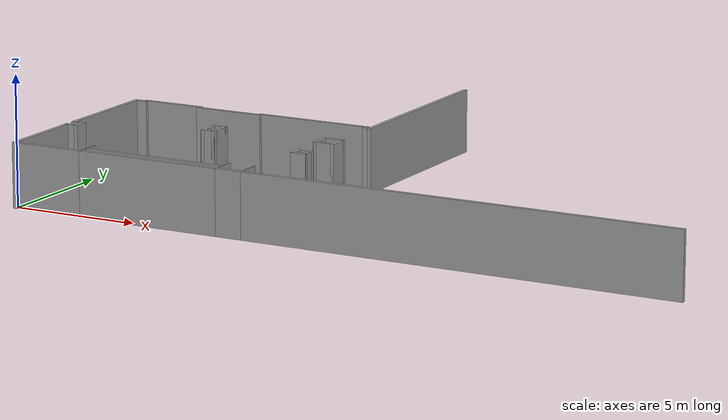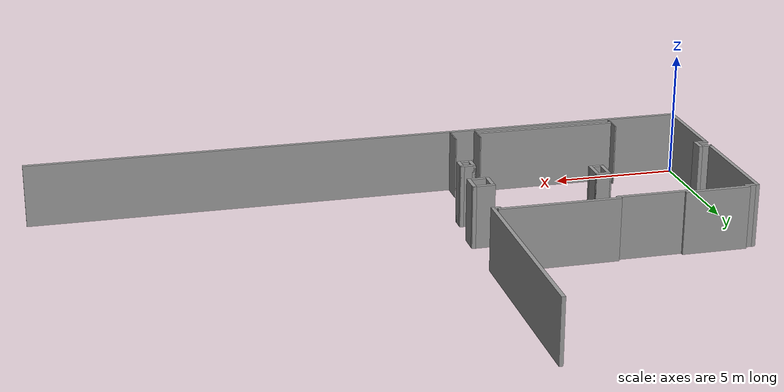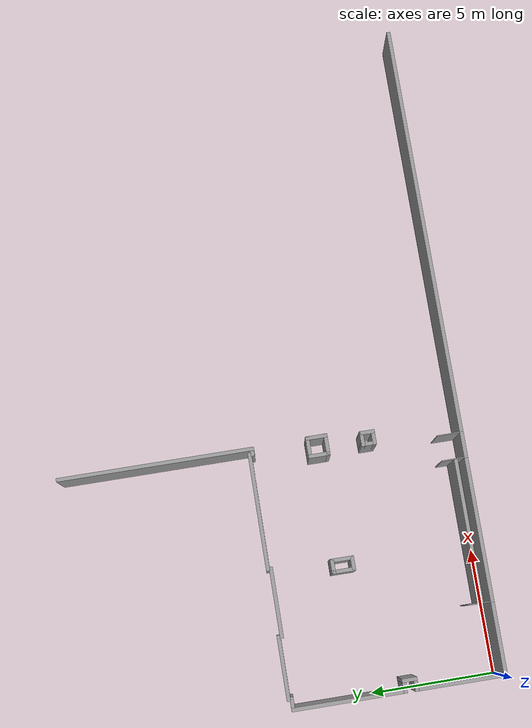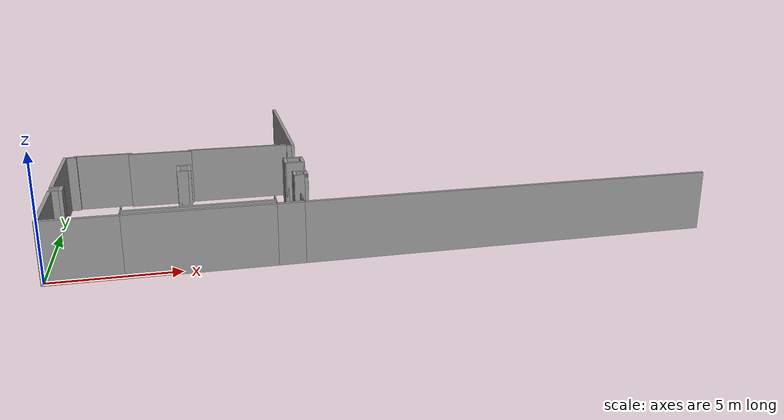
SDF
<?xml version='1.0'?>
<sdf version='1.6'>
  <model name='hoodcourt_pillar'>
    <pose frame=''>13.2775 7.925 0 0 -0 0</pose>
    <link name='Wall_12'>
      <collision name='Wall_12_Collision'>
        <geometry>
          <box>
            <size>2.95 0.15 2.5</size>
          </box>
        </geometry>
        <pose frame=''>0 0 1.25 0 -0 0</pose>
      </collision>
      <visual name='Wall_12_Visual'>
        <pose frame=''>0 0 1.25 0 -0 0</pose>
        <geometry>
          <box>
            <size>2.95 0.15 2.5</size>
          </box>
        </geometry>
        <material>
          <script>
            <uri>file://media/materials/scripts/gazebo.material</uri>
            <name>Gazebo/Grey</name>
          </script>
          <ambient>1 1 1 1</ambient>
        </material>
      </visual>
      <pose frame=''>-11.8775 -8.075 0 0 -0 0</pose>
    </link>
    <link name='Wall_120'>
      <collision name='Wall_120_Collision'>
        <geometry>
          <box>
            <size>0.6 0.15 2.5</size>
          </box>
        </geometry>
        <pose frame=''>0 0 1.25 0 -0 0</pose>
      </collision>
      <visual name='Wall_120_Visual'>
        <pose frame=''>0 0 1.25 0 -0 0</pose>
        <geometry>
          <box>
            <size>0.6 0.15 2.5</size>
          </box>
        </geometry>
        <material>
          <script>
            <uri>file://media/materials/scripts/gazebo.material</uri>
            <name>Gazebo/Grey</name>
          </script>
          <ambient>1 1 1 1</ambient>
        </material>
      </visual>
      <pose frame=''>-8.0925 -2.935 0 0 -0 0</pose>
    </link>
    <link name='Wall_122'>
      <collision name='Wall_122_Collision'>
        <geometry>
          <box>
            <size>0.95 0.15 2.5</size>
          </box>
        </geometry>
        <pose frame=''>0 0 1.25 0 -0 0</pose>
      </collision>
      <visual name='Wall_122_Visual'>
        <pose frame=''>0 0 1.25 0 -0 0</pose>
        <geometry>
          <box>
            <size>0.95 0.15 2.5</size>
          </box>
        </geometry>
        <material>
          <script>
            <uri>file://media/materials/scripts/gazebo.material</uri>
            <name>Gazebo/Grey</name>
          </script>
          <ambient>1 1 1 1</ambient>
        </material>
      </visual>
      <pose frame=''>-8.3175 -2.535 0 0 -0 1.5708</pose>
    </link>
    <link name='Wall_124'>
      <collision name='Wall_124_Collision'>
        <geometry>
          <box>
            <size>0.6 0.15 2.5</size>
          </box>
        </geometry>
        <pose frame=''>0 0 1.25 0 -0 0</pose>
      </collision>
      <visual name='Wall_124_Visual'>
        <pose frame=''>0 0 1.25 0 -0 0</pose>
        <geometry>
          <box>
            <size>0.6 0.15 2.5</size>
          </box>
        </geometry>
        <material>
          <script>
            <uri>file://media/materials/scripts/gazebo.material</uri>
            <name>Gazebo/Grey</name>
          </script>
          <ambient>1 1 1 1</ambient>
        </material>
      </visual>
      <pose frame=''>-8.0925 -2.135 0 0 -0 0</pose>
    </link>
    <link name='Wall_126'>
      <collision name='Wall_126_Collision'>
        <geometry>
          <box>
            <size>0.95 0.15 2.5</size>
          </box>
        </geometry>
        <pose frame=''>0 0 1.25 0 -0 0</pose>
      </collision>
      <visual name='Wall_126_Visual'>
        <pose frame=''>0 0 1.25 0 -0 0</pose>
        <geometry>
          <box>
            <size>0.95 0.15 2.5</size>
          </box>
        </geometry>
        <material>
          <script>
            <uri>file://media/materials/scripts/gazebo.material</uri>
            <name>Gazebo/Grey</name>
          </script>
          <ambient>1 1 1 1</ambient>
        </material>
      </visual>
      <pose frame=''>-7.8675 -2.535 0 0 0 -1.5708</pose>
    </link>
    <link name='Wall_128'>
      <collision name='Wall_128_Collision'>
        <geometry>
          <box>
            <size>0.88 0.15 2.5</size>
          </box>
        </geometry>
        <pose frame=''>0 0 1.25 0 -0 0</pose>
      </collision>
      <visual name='Wall_128_Visual'>
        <pose frame=''>0 0 1.25 0 -0 0</pose>
        <geometry>
          <box>
            <size>0.88 0.15 2.5</size>
          </box>
        </geometry>
        <material>
          <script>
            <uri>file://media/materials/scripts/gazebo.material</uri>
            <name>Gazebo/Grey</name>
          </script>
          <ambient>1 1 1 1</ambient>
        </material>
      </visual>
      <pose frame=''>-3.3025 -2.695 0 0 -0 0</pose>
    </link>
    <link name='Wall_130'>
      <collision name='Wall_130_Collision'>
        <geometry>
          <box>
            <size>0.88 0.15 2.5</size>
          </box>
        </geometry>
        <pose frame=''>0 0 1.25 0 -0 0</pose>
      </collision>
      <visual name='Wall_130_Visual'>
        <pose frame=''>0 0 1.25 0 -0 0</pose>
        <geometry>
          <box>
            <size>0.88 0.15 2.5</size>
          </box>
        </geometry>
        <material>
          <script>
            <uri>file://media/materials/scripts/gazebo.material</uri>
            <name>Gazebo/Grey</name>
          </script>
          <ambient>1 1 1 1</ambient>
        </material>
      </visual>
      <pose frame=''>-3.6675 -2.33 0 0 -0 1.5708</pose>
    </link>
    <link name='Wall_132'>
      <collision name='Wall_132_Collision'>
        <geometry>
          <box>
            <size>0.88 0.15 2.5</size>
          </box>
        </geometry>
        <pose frame=''>0 0 1.25 0 -0 0</pose>
      </collision>
      <visual name='Wall_132_Visual'>
        <pose frame=''>0 0 1.25 0 -0 0</pose>
        <geometry>
          <box>
            <size>0.88 0.15 2.5</size>
          </box>
        </geometry>
        <material>
          <script>
            <uri>file://media/materials/scripts/gazebo.material</uri>
            <name>Gazebo/Grey</name>
          </script>
          <ambient>1 1 1 1</ambient>
        </material>
      </visual>
      <pose frame=''>-2.9375 -2.33 0 0 -0 1.5708</pose>
    </link>
    <link name='Wall_134'>
      <collision name='Wall_134_Collision'>
        <geometry>
          <box>
            <size>0.88 0.15 2.5</size>
          </box>
        </geometry>
        <pose frame=''>0 0 1.25 0 -0 0</pose>
      </collision>
      <visual name='Wall_134_Visual'>
        <pose frame=''>0 0 1.25 0 -0 0</pose>
        <geometry>
          <box>
            <size>0.88 0.15 2.5</size>
          </box>
        </geometry>
        <material>
          <script>
            <uri>file://media/materials/scripts/gazebo.material</uri>
            <name>Gazebo/Grey</name>
          </script>
          <ambient>1 1 1 1</ambient>
        </material>
      </visual>
      <pose frame=''>-3.3025 -1.965 0 0 -0 3.14159</pose>
    </link>
    <link name='Wall_136'>
      <collision name='Wall_136_Collision'>
        <geometry>
          <box>
            <size>0.61 0.15 2.5</size>
          </box>
        </geometry>
        <pose frame=''>0 0 1.25 0 -0 0</pose>
      </collision>
      <visual name='Wall_136_Visual'>
        <pose frame=''>0 0 1.25 0 -0 0</pose>
        <geometry>
          <box>
            <size>0.61 0.15 2.5</size>
          </box>
        </geometry>
        <material>
          <script>
            <uri>file://media/materials/scripts/gazebo.material</uri>
            <name>Gazebo/Grey</name>
          </script>
          <ambient>1 1 1 1</ambient>
        </material>
      </visual>
      <pose frame=''>-3.3025 -4.585 0 0 -0 0</pose>
    </link>
    <link name='Wall_138'>
      <collision name='Wall_138_Collision'>
        <geometry>
          <box>
            <size>0.61 0.15 2.5</size>
          </box>
        </geometry>
        <pose frame=''>0 0 1.25 0 -0 0</pose>
      </collision>
      <visual name='Wall_138_Visual'>
        <pose frame=''>0 0 1.25 0 -0 0</pose>
        <geometry>
          <box>
            <size>0.61 0.15 2.5</size>
          </box>
        </geometry>
        <material>
          <script>
            <uri>file://media/materials/scripts/gazebo.material</uri>
            <name>Gazebo/Grey</name>
          </script>
          <ambient>1 1 1 1</ambient>
        </material>
      </visual>
      <pose frame=''>-3.5325 -4.355 0 0 -0 1.5708</pose>
    </link>
    <link name='Wall_140'>
      <collision name='Wall_140_Collision'>
        <geometry>
          <box>
            <size>0.61 0.15 2.5</size>
          </box>
        </geometry>
        <pose frame=''>0 0 1.25 0 -0 0</pose>
      </collision>
      <visual name='Wall_140_Visual'>
        <pose frame=''>0 0 1.25 0 -0 0</pose>
        <geometry>
          <box>
            <size>0.61 0.15 2.5</size>
          </box>
        </geometry>
        <material>
          <script>
            <uri>file://media/materials/scripts/gazebo.material</uri>
            <name>Gazebo/Grey</name>
          </script>
          <ambient>1 1 1 1</ambient>
        </material>
      </visual>
      <pose frame=''>-3.0725 -4.355 0 0 -0 1.5708</pose>
    </link>
    <link name='Wall_142'>
      <collision name='Wall_142_Collision'>
        <geometry>
          <box>
            <size>0.61 0.15 2.5</size>
          </box>
        </geometry>
        <pose frame=''>0 0 1.25 0 -0 0</pose>
      </collision>
      <visual name='Wall_142_Visual'>
        <pose frame=''>0 0 1.25 0 -0 0</pose>
        <geometry>
          <box>
            <size>0.61 0.15 2.5</size>
          </box>
        </geometry>
        <material>
          <script>
            <uri>file://media/materials/scripts/gazebo.material</uri>
            <name>Gazebo/Grey</name>
          </script>
          <ambient>1 1 1 1</ambient>
        </material>
      </visual>
      <pose frame=''>-3.3025 -4.125 0 0 -0 0</pose>
    </link>
    <link name='Wall_17'>
      <collision name='Wall_17_Collision'>
        <geometry>
          <box>
            <size>3.35 0.15 2.5</size>
          </box>
        </geometry>
        <pose frame=''>0 0 1.25 0 -0 0</pose>
      </collision>
      <visual name='Wall_17_Visual'>
        <pose frame=''>0 0 1.25 0 -0 0</pose>
        <geometry>
          <box>
            <size>3.35 0.15 2.5</size>
          </box>
        </geometry>
        <material>
          <script>
            <uri>file://media/materials/scripts/gazebo.material</uri>
            <name>Gazebo/Grey</name>
          </script>
          <ambient>1 1 1 1</ambient>
        </material>
      </visual>
      <pose frame=''>-13.2775 -6.325 0 0 -0 1.5708</pose>
    </link>
    <link name='Wall_19'>
      <collision name='Wall_19_Collision'>
        <geometry>
          <box>
            <size>0.41 0.15 2.5</size>
          </box>
        </geometry>
        <pose frame=''>0 0 1.25 0 -0 0</pose>
      </collision>
      <visual name='Wall_19_Visual'>
        <pose frame=''>0 0 1.25 0 -0 0</pose>
        <geometry>
          <box>
            <size>0.41 0.15 2.5</size>
          </box>
        </geometry>
        <material>
          <script>
            <uri>file://media/materials/scripts/gazebo.material</uri>
            <name>Gazebo/Grey</name>
          </script>
          <ambient>1 1 1 1</ambient>
        </material>
      </visual>
      <pose frame=''>-13.1475 -4.575 0 0 -0 0</pose>
    </link>
    <link name='Wall_21'>
      <collision name='Wall_21_Collision'>
        <geometry>
          <box>
            <size>0.41 0.15 2.5</size>
          </box>
        </geometry>
        <pose frame=''>0 0 1.25 0 -0 0</pose>
      </collision>
      <visual name='Wall_21_Visual'>
        <pose frame=''>0 0 1.25 0 -0 0</pose>
        <geometry>
          <box>
            <size>0.41 0.15 2.5</size>
          </box>
        </geometry>
        <material>
          <script>
            <uri>file://media/materials/scripts/gazebo.material</uri>
            <name>Gazebo/Grey</name>
          </script>
          <ambient>1 1 1 1</ambient>
        </material>
      </visual>
      <pose frame=''>-13.1475 -4.125 0 0 -0 0</pose>
    </link>
    <link name='Wall_30'>
      <collision name='Wall_30_Collision'>
        <geometry>
          <box>
            <size>0.6 0.15 2.5</size>
          </box>
        </geometry>
        <pose frame=''>0 0 1.25 0 -0 0</pose>
      </collision>
      <visual name='Wall_30_Visual'>
        <pose frame=''>0 0 1.25 0 -0 0</pose>
        <geometry>
          <box>
            <size>0.6 0.15 2.5</size>
          </box>
        </geometry>
        <material>
          <script>
            <uri>file://media/materials/scripts/gazebo.material</uri>
            <name>Gazebo/Grey</name>
          </script>
          <ambient>1 1 1 1</ambient>
        </material>
      </visual>
      <pose frame=''>-12.8675 -4.35 0 0 -0 1.5708</pose>
    </link>
    <link name='Wall_33'>
      <collision name='Wall_33_Collision'>
        <geometry>
          <box>
            <size>4.51 0.15 2.5</size>
          </box>
        </geometry>
        <pose frame=''>0 0 1.25 0 -0 0</pose>
      </collision>
      <visual name='Wall_33_Visual'>
        <pose frame=''>0 0 1.25 0 -0 0</pose>
        <geometry>
          <box>
            <size>4.51 0.15 2.5</size>
          </box>
        </geometry>
        <material>
          <script>
            <uri>file://media/materials/scripts/gazebo.material</uri>
            <name>Gazebo/Grey</name>
          </script>
          <ambient>1 1 1 1</ambient>
        </material>
      </visual>
      <pose frame=''>-13.2775 -1.895 0 0 -0 1.5708</pose>
    </link>
    <link name='Wall_39'>
      <collision name='Wall_39_Collision'>
        <geometry>
          <box>
            <size>2.56 0.15 2.5</size>
          </box>
        </geometry>
        <pose frame=''>0 0 1.25 0 -0 0</pose>
      </collision>
      <visual name='Wall_39_Visual'>
        <pose frame=''>0 0 1.25 0 -0 0</pose>
        <geometry>
          <box>
            <size>2.56 0.15 2.5</size>
          </box>
        </geometry>
        <material>
          <script>
            <uri>file://media/materials/scripts/gazebo.material</uri>
            <name>Gazebo/Grey</name>
          </script>
          <ambient>1 1 1 1</ambient>
        </material>
      </visual>
      <pose frame=''>-11.6575 0.405 0 0 -0 0</pose>
    </link>
    <link name='Wall_50'>
      <collision name='Wall_50_Collision'>
        <geometry>
          <box>
            <size>0.415 0.15 2.5</size>
          </box>
        </geometry>
        <pose frame=''>0 0 1.25 0 -0 0</pose>
      </collision>
      <visual name='Wall_50_Visual'>
        <pose frame=''>0 0 1.25 0 -0 0</pose>
        <geometry>
          <box>
            <size>0.415 0.15 2.5</size>
          </box>
        </geometry>
        <material>
          <script>
            <uri>file://media/materials/scripts/gazebo.material</uri>
            <name>Gazebo/Grey</name>
          </script>
          <ambient>1 1 1 1</ambient>
        </material>
      </visual>
      <pose frame=''>-12.995 0.285 0 0 -0 0</pose>
    </link>
    <link name='Wall_52'>
      <collision name='Wall_52_Collision'>
        <geometry>
          <box>
            <size>2.81 0.15 2.5</size>
          </box>
        </geometry>
        <pose frame=''>0 0 1.25 0 -0 0</pose>
      </collision>
      <visual name='Wall_52_Visual'>
        <pose frame=''>0 0 1.25 0 -0 0</pose>
        <geometry>
          <box>
            <size>2.81 0.15 2.5</size>
          </box>
        </geometry>
        <material>
          <script>
            <uri>file://media/materials/scripts/gazebo.material</uri>
            <name>Gazebo/Grey</name>
          </script>
          <ambient>1 1 1 1</ambient>
        </material>
      </visual>
      <pose frame=''>-9.1225 0.285 0 0 -0 0</pose>
    </link>
    <link name='Wall_54'>
      <collision name='Wall_54_Collision'>
        <geometry>
          <box>
            <size>4.73 0.15 2.5</size>
          </box>
        </geometry>
        <pose frame=''>0 0 1.25 0 -0 0</pose>
      </collision>
      <visual name='Wall_54_Visual'>
        <pose frame=''>0 0 1.25 0 -0 0</pose>
        <geometry>
          <box>
            <size>4.73 0.15 2.5</size>
          </box>
        </geometry>
        <material>
          <script>
            <uri>file://media/materials/scripts/gazebo.material</uri>
            <name>Gazebo/Grey</name>
          </script>
          <ambient>1 1 1 1</ambient>
        </material>
      </visual>
      <pose frame=''>-5.5025 0.405 0 0 -0 0</pose>
    </link>
    <link name='Wall_56'>
      <collision name='Wall_56_Collision'>
        <geometry>
          <box>
            <size>0.365 0.15 2.5</size>
          </box>
        </geometry>
        <pose frame=''>0 0 1.25 0 -0 0</pose>
      </collision>
      <visual name='Wall_56_Visual'>
        <pose frame=''>0 0 1.25 0 -0 0</pose>
        <geometry>
          <box>
            <size>0.365 0.15 2.5</size>
          </box>
        </geometry>
        <material>
          <script>
            <uri>file://media/materials/scripts/gazebo.material</uri>
            <name>Gazebo/Grey</name>
          </script>
          <ambient>1 1 1 1</ambient>
        </material>
      </visual>
      <pose frame=''>-3.105 0.285 0 0 -0 0</pose>
    </link>
    <link name='Wall_58'>
      <collision name='Wall_58_Collision'>
        <geometry>
          <box>
            <size>7.95 0.15 2.5</size>
          </box>
        </geometry>
        <pose frame=''>0 0 1.25 0 -0 0</pose>
      </collision>
      <visual name='Wall_58_Visual'>
        <pose frame=''>0 0 1.25 0 -0 0</pose>
        <geometry>
          <box>
            <size>7.95 0.15 2.5</size>
          </box>
        </geometry>
        <material>
          <script>
            <uri>file://media/materials/scripts/gazebo.material</uri>
            <name>Gazebo/Grey</name>
          </script>
          <ambient>1 1 1 1</ambient>
        </material>
      </visual>
      <pose frame=''>-2.9975 4.175 0 0 -0 1.5708</pose>
    </link>
    <link name='Wall_62'>
      <collision name='Wall_62_Collision'>
        <geometry>
          <box>
            <size>0.9 0.04 2.5</size>
          </box>
        </geometry>
        <pose frame=''>0 0 1.25 0 -0 0</pose>
      </collision>
      <visual name='Wall_62_Visual'>
        <pose frame=''>0 0 1.25 0 -0 0</pose>
        <geometry>
          <box>
            <size>0.9 0.04 2.5</size>
          </box>
        </geometry>
        <material>
          <script>
            <uri>file://media/materials/scripts/gazebo.material</uri>
            <name>Gazebo/Grey</name>
          </script>
          <ambient>1 1 1 1</ambient>
        </material>
      </visual>
      <pose frame=''>-10.42 -7.545 0 0 -0 1.56731</pose>
    </link>
    <link name='Wall_64'>
      <collision name='Wall_64_Collision'>
        <geometry>
          <box>
            <size>5.745 0.15 2.5</size>
          </box>
        </geometry>
        <pose frame=''>0 0 1.25 0 -0 0</pose>
      </collision>
      <visual name='Wall_64_Visual'>
        <pose frame=''>0 0 1.25 0 -0 0</pose>
        <geometry>
          <box>
            <size>5.745 0.15 2.5</size>
          </box>
        </geometry>
        <material>
          <script>
            <uri>file://media/materials/scripts/gazebo.material</uri>
            <name>Gazebo/Grey</name>
          </script>
          <ambient>1 1 1 1</ambient>
        </material>
      </visual>
      <pose frame=''>-7.575 -8.075 0 0 -0 0</pose>
    </link>
    <link name='Wall_66'>
      <collision name='Wall_66_Collision'>
        <geometry>
          <box>
            <size>5.7 0.15 2.5</size>
          </box>
        </geometry>
        <pose frame=''>0 0 1.25 0 -0 0</pose>
      </collision>
      <visual name='Wall_66_Visual'>
        <pose frame=''>0 0 1.25 0 -0 0</pose>
        <geometry>
          <box>
            <size>5.7 0.15 2.5</size>
          </box>
        </geometry>
        <material>
          <script>
            <uri>file://media/materials/scripts/gazebo.material</uri>
            <name>Gazebo/Grey</name>
          </script>
          <ambient>1 1 1 1</ambient>
        </material>
      </visual>
      <pose frame=''>-7.5525 -7.655 0 0 -0 0</pose>
    </link>
    <link name='Wall_68'>
      <collision name='Wall_68_Collision'>
        <geometry>
          <box>
            <size>0.9 0.04 2.5</size>
          </box>
        </geometry>
        <pose frame=''>0 0 1.25 0 -0 0</pose>
      </collision>
      <visual name='Wall_68_Visual'>
        <pose frame=''>0 0 1.25 0 -0 0</pose>
        <geometry>
          <box>
            <size>0.9 0.04 2.5</size>
          </box>
        </geometry>
        <material>
          <script>
            <uri>file://media/materials/scripts/gazebo.material</uri>
            <name>Gazebo/Grey</name>
          </script>
          <ambient>1 1 1 1</ambient>
        </material>
      </visual>
      <pose frame=''>-4.6855 -7.545 0 0 -0 1.5708</pose>
    </link>
    <link name='Wall_70'>
      <collision name='Wall_70_Collision'>
        <geometry>
          <box>
            <size>0.9 0.04 2.5</size>
          </box>
        </geometry>
        <pose frame=''>0 0 1.25 0 -0 0</pose>
      </collision>
      <visual name='Wall_70_Visual'>
        <pose frame=''>0 0 1.25 0 -0 0</pose>
        <geometry>
          <box>
            <size>0.9 0.04 2.5</size>
          </box>
        </geometry>
        <material>
          <script>
            <uri>file://media/materials/scripts/gazebo.material</uri>
            <name>Gazebo/Grey</name>
          </script>
          <ambient>1 1 1 1</ambient>
        </material>
      </visual>
      <pose frame=''>-3.6655 -7.545 0 0 -0 1.5708</pose>
    </link>
    <link name='Wall_72'>
      <collision name='Wall_72_Collision'>
        <geometry>
          <box>
            <size>1.06 0.15 2.5</size>
          </box>
        </geometry>
        <pose frame=''>0 0 1.25 0 -0 0</pose>
      </collision>
      <visual name='Wall_72_Visual'>
        <pose frame=''>0 0 1.25 0 -0 0</pose>
        <geometry>
          <box>
            <size>1.06 0.15 2.5</size>
          </box>
        </geometry>
        <material>
          <script>
            <uri>file://media/materials/scripts/gazebo.material</uri>
            <name>Gazebo/Grey</name>
          </script>
          <ambient>1 1 1 1</ambient>
        </material>
      </visual>
      <pose frame=''>-4.1765 -8.075 0 0 -0 0</pose>
    </link>
    <link name='Wall_74'>
      <collision name='Wall_74_Collision'>
        <geometry>
          <box>
            <size>17 0.15 2.5</size>
          </box>
        </geometry>
        <pose frame=''>0 0 1.25 0 -0 0</pose>
      </collision>
      <visual name='Wall_74_Visual'>
        <pose frame=''>0 0 1.25 0 -0 0</pose>
        <geometry>
          <box>
            <size>17 0.15 2.5</size>
          </box>
        </geometry>
        <material>
          <script>
            <uri>file://media/materials/scripts/gazebo.material</uri>
            <name>Gazebo/Grey</name>
          </script>
          <ambient>1 1 1 1</ambient>
        </material>
      </visual>
      <pose frame=''>4.8525 -8.075 0 0 -0 0</pose>
    </link>
    <static>1</static>
  </model>
</sdf>
